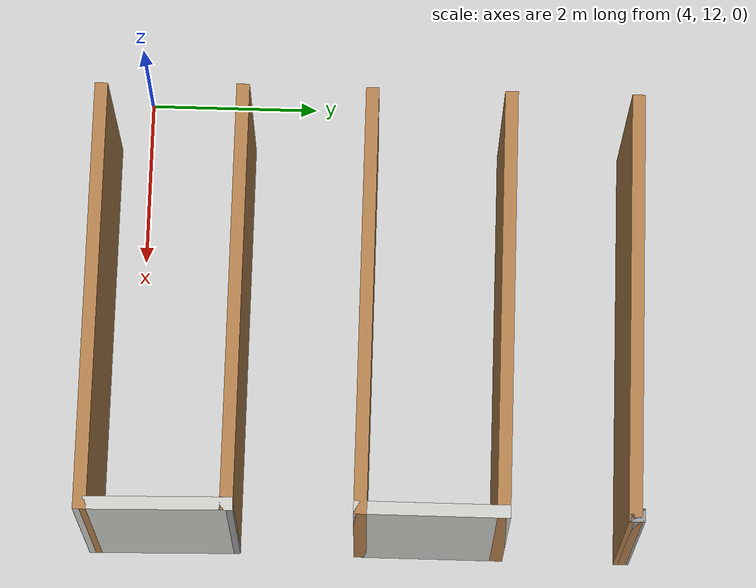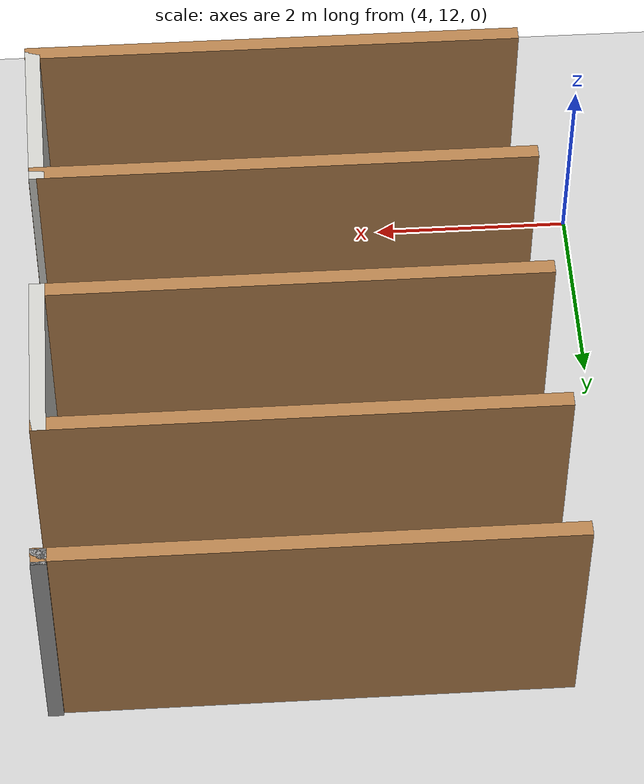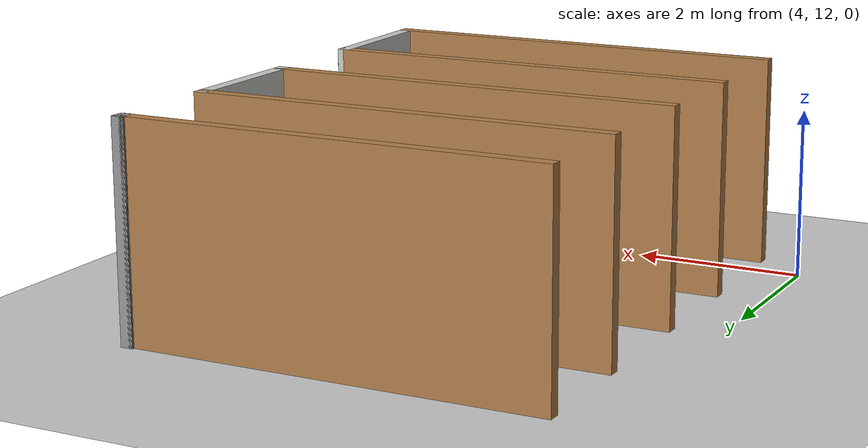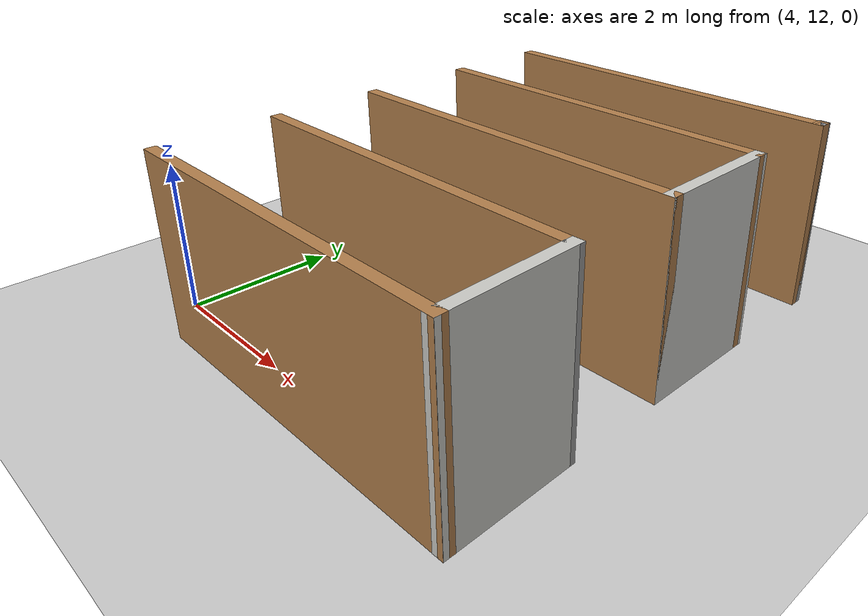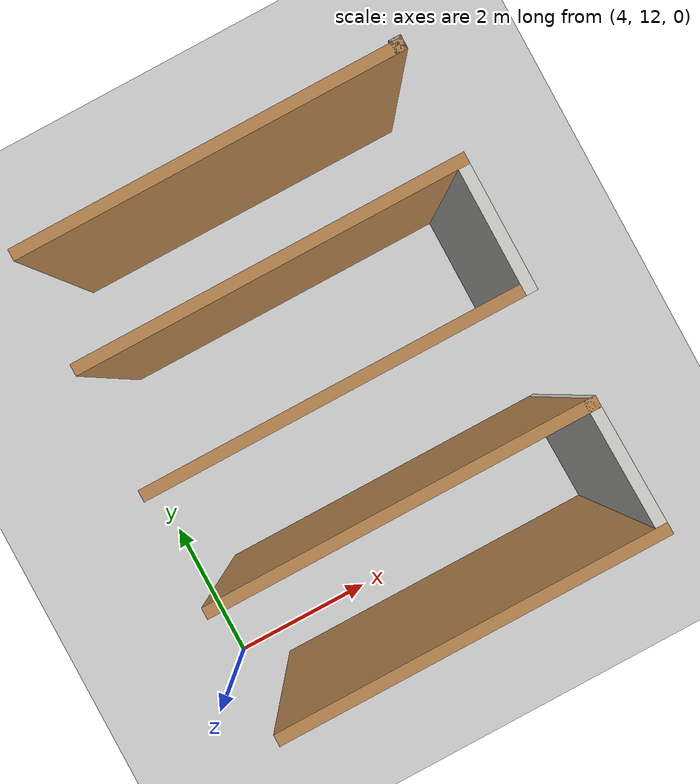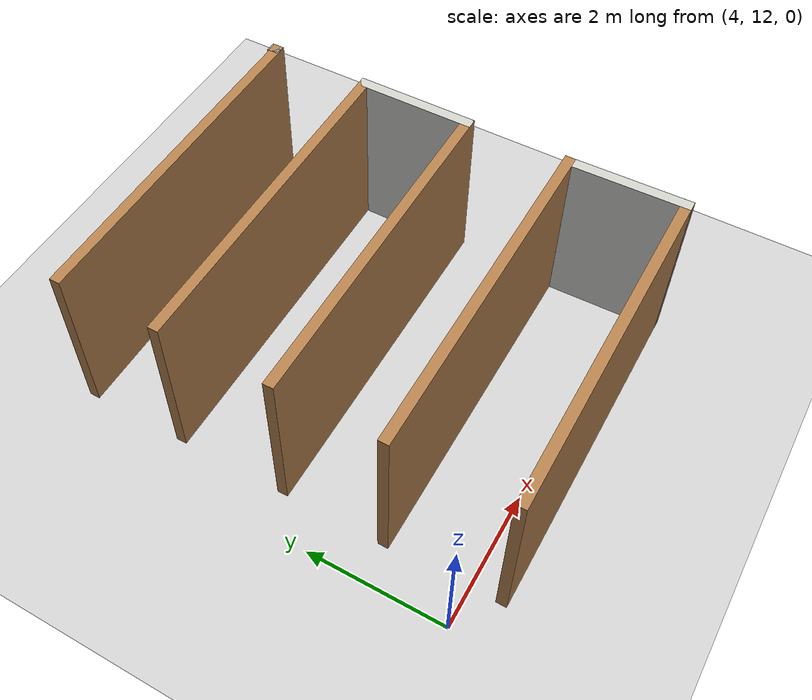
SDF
<sdf version="1.6">
 <world name="default">
  <model name="ground_plane">
   <static>1</static>
   <link name="link">
    <collision name="collision">
     <geometry><plane><normal>0 0 1</normal><size>100 100</size></plane></geometry>
     <surface>
      <contact><collide_bitmask>65535</collide_bitmask></contact>
      <friction><ode><mu>100</mu><mu2>50</mu2></ode></friction>
     </surface>
    </collision>
    <visual name="visual">
     <cast_shadows>0</cast_shadows>
     <geometry><plane><normal>0 0 1</normal><size>100 100</size></plane></geometry>
     <material>
      <script><uri>file://media/materials/scripts/gazebo.material</uri><name>Gazebo/Grey</name></script>
     </material>
    </visual>
   </link>
  </model>
  <model name="ecst_lab_v2">
   <pose>2.40126 7.41042 0 0 -0 -1.57079</pose>
   <link name="Wall_1">
    <collision name="Wall_1_Collision">
     <geometry><box><size>5 0.15 2.5</size></box></geometry>
     <pose>0 0 1.25 0 -0 0</pose>
    </collision>
    <visual name="Wall_1_Visual">
     <pose>0 0 1.25 0 -0 0</pose>
     <geometry><box><size>5 0.15 2.5</size></box></geometry>
     <material>
      <script><uri>file://media/materials/scripts/gazebo.material</uri><name>Gazebo/Wood</name></script>
      <ambient>1 1 1 1</ambient>
     </material>
     <meta><layer>0</layer></meta>
    </visual>
    <pose>-4.16301 4.67727 0 0 -0 -1.5708</pose>
   </link>
   <link name="Wall_107">
    <collision name="Wall_107_Collision">
     <geometry><box><size>0.16 0.15 2.5</size></box></geometry>
     <pose>0 0 1.25 0 -0 0</pose>
    </collision>
    <visual name="Wall_107_Visual">
     <pose>0 0 1.25 0 -0 0</pose>
     <geometry><box><size>0.16 0.15 2.5</size></box></geometry>
     <material>
      <script><uri>file://media/materials/scripts/gazebo.material</uri><name>Gazebo/Grey</name></script>
      <ambient>1 1 1 1</ambient>
     </material>
     <meta><layer>0</layer></meta>
    </visual>
    <pose>-10.3685 7.06822 0 0 -0 0</pose>
   </link>
   <link name="Wall_108">
    <collision name="Wall_108_Collision">
     <geometry><box><size>0.16 0.15 2.5</size></box></geometry>
     <pose>0 0 1.25 0 -0 0</pose>
    </collision>
    <visual name="Wall_108_Visual">
     <pose>0 0 1.25 0 -0 0</pose>
     <geometry><box><size>0.16 0.15 2.5</size></box></geometry>
     <material>
      <script><uri>file://media/materials/scripts/gazebo.material</uri><name>Gazebo/Grey</name></script>
      <ambient>1 1 1 1</ambient>
     </material>
     <meta><layer>0</layer></meta>
    </visual>
    <pose>-10.3685 7.06822 0 0 -0 3.14159</pose>
   </link>
   <link name="Wall_109">
    <collision name="Wall_109_Collision">
     <geometry><box><size>0.16 0.15 2.5</size></box></geometry>
     <pose>0 0 1.25 0 -0 0</pose>
    </collision>
    <visual name="Wall_109_Visual">
     <pose>0 0 1.25 0 -0 0</pose>
     <geometry><box><size>0.16 0.15 2.5</size></box></geometry>
     <material>
      <script><uri>file://media/materials/scripts/gazebo.material</uri><name>Gazebo/Grey</name></script>
      <ambient>1 1 1 1</ambient>
     </material>
     <meta><layer>0</layer></meta>
    </visual>
    <pose>-10.3685 7.06822 0 0 -0 0</pose>
   </link>
   <link name="Wall_110">
    <collision name="Wall_110_Collision">
     <geometry><box><size>0.16 0.15 2.5</size></box></geometry>
     <pose>0 0 1.25 0 -0 0</pose>
    </collision>
    <visual name="Wall_110_Visual">
     <pose>0 0 1.25 0 -0 0</pose>
     <geometry><box><size>0.16 0.15 2.5</size></box></geometry>
     <material>
      <script><uri>file://media/materials/scripts/gazebo.material</uri><name>Gazebo/Grey</name></script>
      <ambient>1 1 1 1</ambient>
     </material>
     <meta><layer>0</layer></meta>
    </visual>
    <pose>-10.3685 7.06822 0 0 -0 3.14159</pose>
   </link>
   <link name="Wall_116">
    <collision name="Wall_116_Collision">
     <geometry><box><size>0.16 0.15 2.5</size></box></geometry>
     <pose>0 0 1.25 0 -0 0</pose>
    </collision>
    <visual name="Wall_116_Visual">
     <pose>0 0 1.25 0 -0 0</pose>
     <geometry><box><size>0.16 0.15 2.5</size></box></geometry>
     <material>
      <script><uri>file://media/materials/scripts/gazebo.material</uri><name>Gazebo/Grey</name></script>
      <ambient>1 1 1 1</ambient>
     </material>
     <meta><layer>0</layer></meta>
    </visual>
    <pose>-10.3585 7.06822 0 0 -0 0</pose>
   </link>
   <link name="Wall_117">
    <collision name="Wall_117_Collision">
     <geometry><box><size>0.16 0.15 2.5</size></box></geometry>
     <pose>0 0 1.25 0 -0 0</pose>
    </collision>
    <visual name="Wall_117_Visual">
     <pose>0 0 1.25 0 -0 0</pose>
     <geometry><box><size>0.16 0.15 2.5</size></box></geometry>
     <material>
      <script><uri>file://media/materials/scripts/gazebo.material</uri><name>Gazebo/Wood</name></script>
      <ambient>1 1 1 1</ambient>
     </material>
     <meta><layer>0</layer></meta>
    </visual>
    <pose>-10.3485 7.06822 0 0 -0 0</pose>
   </link>
   <link name="Wall_118">
    <collision name="Wall_118_Collision">
     <geometry><box><size>5 0.15 2.5</size></box></geometry>
     <pose>0 0 1.25 0 -0 0</pose>
    </collision>
    <visual name="Wall_118_Visual">
     <pose>0 0 1.25 0 -0 0</pose>
     <geometry><box><size>5 0.15 2.5</size></box></geometry>
     <material>
      <script><uri>file://media/materials/scripts/gazebo.material</uri><name>Gazebo/Wood</name></script>
      <ambient>1 1 1 1</ambient>
     </material>
     <meta><layer>0</layer></meta>
    </visual>
    <pose>-10.3435 4.64322 0 0 -0 -1.5708</pose>
   </link>
   <link name="Wall_123">
    <collision name="Wall_123_Collision">
     <geometry><box><size>5 0.15 2.5</size></box></geometry>
     <pose>0 0 1.25 0 -0 0</pose>
    </collision>
    <visual name="Wall_123_Visual">
     <pose>0 0 1.25 0 -0 0</pose>
     <geometry><box><size>5 0.15 2.5</size></box></geometry>
     <material>
      <script><uri>file://media/materials/scripts/gazebo.material</uri><name>Gazebo/Wood</name></script>
      <ambient>1 1 1 1</ambient>
     </material>
     <meta><layer>0</layer></meta>
    </visual>
    <pose>-8.8835 4.64322 0 0 -0 1.5708</pose>
   </link>
   <link name="Wall_124">
    <collision name="Wall_124_Collision">
     <geometry><box><size>1.75 0.15 2.5</size></box></geometry>
     <pose>0 0 1.25 0 -0 0</pose>
    </collision>
    <visual name="Wall_124_Visual">
     <pose>0 0 1.25 0 -0 0</pose>
     <geometry><box><size>1.75 0.15 2.5</size></box></geometry>
     <material>
      <script><uri>file://media/materials/scripts/gazebo.material</uri><name>Gazebo/CeilingTiled</name></script>
      <ambient>1 1 1 1</ambient>
     </material>
     <meta><layer>0</layer></meta>
    </visual>
    <pose>-8.0835 7.06822 0 0 -0 0</pose>
   </link>
   <link name="Wall_125">
    <collision name="Wall_125_Collision">
     <geometry><box><size>5 0.15 2.5</size></box></geometry>
     <pose>0 0 1.25 0 -0 0</pose>
    </collision>
    <visual name="Wall_125_Visual">
     <pose>0 0 1.25 0 -0 0</pose>
     <geometry><box><size>5 0.15 2.5</size></box></geometry>
     <material>
      <script><uri>file://media/materials/scripts/gazebo.material</uri><name>Gazebo/Wood</name></script>
      <ambient>1 1 1 1</ambient>
     </material>
     <meta><layer>0</layer></meta>
    </visual>
    <pose>-7.2835 4.64322 0 0 -0 -1.5708</pose>
   </link>
   <link name="Wall_133">
    <collision name="Wall_133_Collision">
     <geometry><box><size>5 0.15 2.5</size></box></geometry>
     <pose>0 0 1.25 0 -0 0</pose>
    </collision>
    <visual name="Wall_133_Visual">
     <pose>0 0 1.25 0 -0 0</pose>
     <geometry><box><size>5 0.15 2.5</size></box></geometry>
     <material>
      <script><uri>file://media/materials/scripts/gazebo.material</uri><name>Gazebo/Wood</name></script>
      <ambient>1 1 1 1</ambient>
     </material>
     <meta><layer>0</layer></meta>
    </visual>
    <pose>-5.7935 4.64322 0 0 -0 1.5708</pose>
   </link>
   <link name="Wall_134">
    <collision name="Wall_134_Collision">
     <geometry><box><size>0.15 0.15 2.5</size></box></geometry>
     <pose>0 0 1.25 0 -0 0</pose>
    </collision>
    <visual name="Wall_134_Visual">
     <pose>0 0 1.25 0 -0 0</pose>
     <geometry><box><size>0.15 0.15 2.5</size></box></geometry>
     <material>
      <script><uri>file://media/materials/scripts/gazebo.material</uri><name>Gazebo/Grey</name></script>
      <ambient>1 1 1 1</ambient>
     </material>
     <meta><layer>0</layer></meta>
    </visual>
    <pose>-5.7935 7.06822 0 0 -0 0</pose>
   </link>
   <link name="Wall_135">
    <collision name="Wall_135_Collision">
     <geometry><box><size>0.15 0.15 2.5</size></box></geometry>
     <pose>0 0 1.25 0 -0 0</pose>
    </collision>
    <visual name="Wall_135_Visual">
     <pose>0 0 1.25 0 -0 0</pose>
     <geometry><box><size>0.15 0.15 2.5</size></box></geometry>
     <material>
      <script><uri>file://media/materials/scripts/gazebo.material</uri><name>Gazebo/Grey</name></script>
      <ambient>1 1 1 1</ambient>
     </material>
     <meta><layer>0</layer></meta>
    </visual>
    <pose>-5.7935 7.06822 0 0 -0 0</pose>
   </link>
   <link name="Wall_136">
    <collision name="Wall_136_Collision">
     <geometry><box><size>0.15 0.15 2.5</size></box></geometry>
     <pose>0 0 1.25 0 -0 0</pose>
    </collision>
    <visual name="Wall_136_Visual">
     <pose>0 0 1.25 0 -0 0</pose>
     <geometry><box><size>0.15 0.15 2.5</size></box></geometry>
     <material>
      <script><uri>file://media/materials/scripts/gazebo.material</uri><name>Gazebo/Grey</name></script>
      <ambient>1 1 1 1</ambient>
     </material>
     <meta><layer>0</layer></meta>
    </visual>
    <pose>-5.7935 7.06822 0 0 -0 0</pose>
   </link>
   <link name="Wall_137">
    <collision name="Wall_137_Collision">
     <geometry><box><size>0.15 0.15 2.5</size></box></geometry>
     <pose>0 0 1.25 0 -0 0</pose>
    </collision>
    <visual name="Wall_137_Visual">
     <pose>0 0 1.25 0 -0 0</pose>
     <geometry><box><size>0.15 0.15 2.5</size></box></geometry>
     <material>
      <script><uri>file://media/materials/scripts/gazebo.material</uri><name>Gazebo/Grey</name></script>
      <ambient>1 1 1 1</ambient>
     </material>
     <meta><layer>0</layer></meta>
    </visual>
    <pose>-5.7935 7.06822 0 0 -0 0</pose>
   </link>
   <link name="Wall_138">
    <collision name="Wall_138_Collision">
     <geometry><box><size>1.78084 0.15 2.5</size></box></geometry>
     <pose>0 0 1.25 0 -0 0</pose>
    </collision>
    <visual name="Wall_138_Visual">
     <pose>0 0 1.25 0 -0 0</pose>
     <geometry><box><size>1.78084 0.15 2.5</size></box></geometry>
     <material>
      <script><uri>file://media/materials/scripts/gazebo.material</uri><name>Gazebo/CeilingTiled</name></script>
      <ambient>1 1 1 1</ambient>
     </material>
     <meta><layer>0</layer></meta>
    </visual>
    <pose>-4.97826 7.08524 0 0 -0 0.020886</pose>
   </link>
   <static>1</static>
  </model>
 </world>
</sdf>
